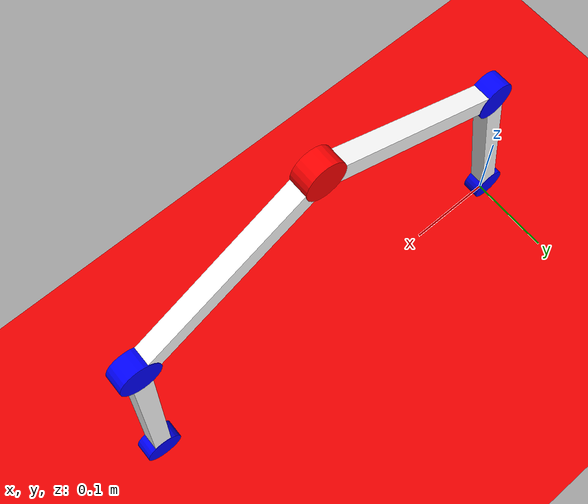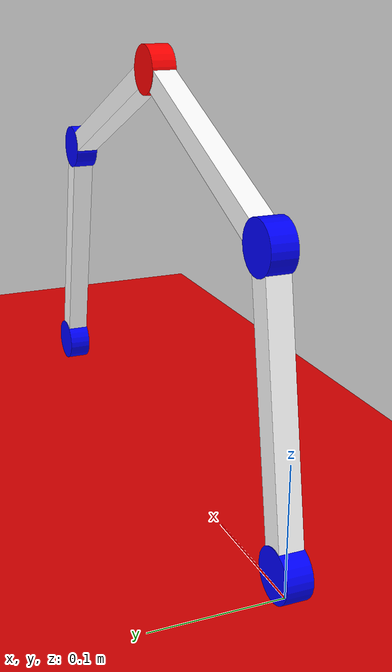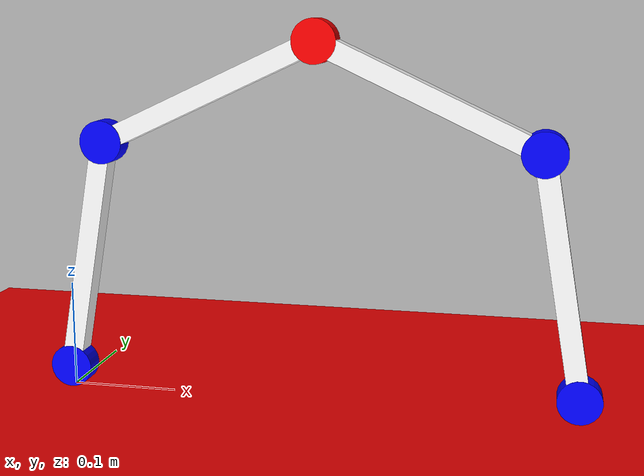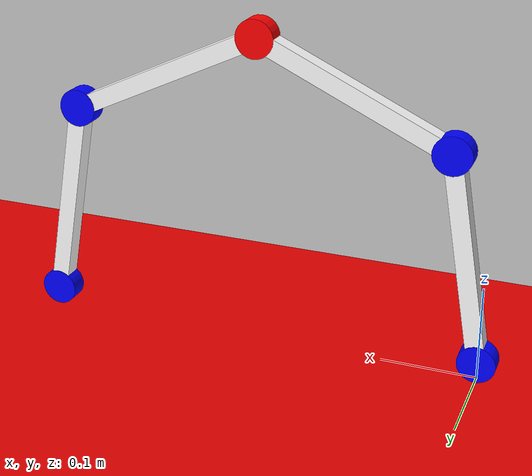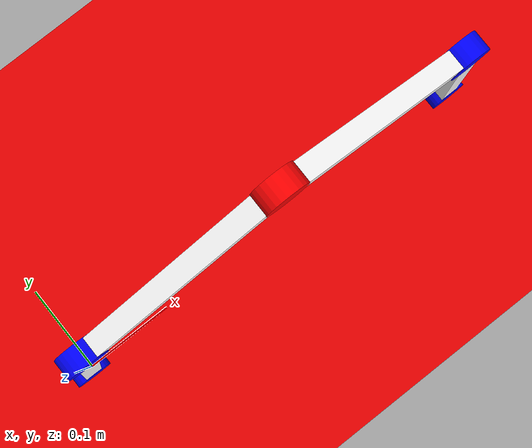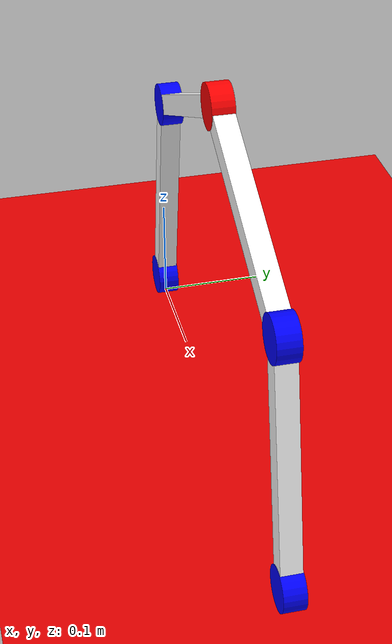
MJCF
<mujoco>
    <option timestep="0.0002" />
    <asset>
        <material name="black" rgba="0 0 0 0.5" />
        <material name="blue_" rgba="0 0 1 1" />
        <material name="green" rgba="0 1 0 1" />
        <material name="red__" rgba="1 0 0 1" />
        <material name="white" rgba="1 1 1 1" />
    </asset>
    <actuator>
        <motor gear="100" joint="joint_1" name="first_motor" ctrlrange="-50 50" ctrllimited="true"/>
        <motor gear="100" joint="joint_5" name="second_motor" ctrlrange="-50 50" ctrllimited="true"/>
    </actuator>
    <worldbody>
        <geom type="plane" size="10 10 0.1" pos="0 0 0" rgba=".9 0 0 1" />
        <light diffuse=".5 .5 .5" pos="0 0 3" dir="0 0 -1" />
        <body name="active_0" pos="0 0 0.02" euler="0 100 0">
            <geom type="cylinder" size=".02 .01" pos="0 0 0" euler="90 0 0" material="blue_" mass="0.065"/>
            <joint name="joint_1" pos="0 0 0" axis="0 1 0" />-
            <geom type="box" size=".0095 .0095 .1" pos="-.11 0 0" euler="0 90 0" material="white" />
            <body name="passive_0" pos="-.22 0 0" euler="0 55 0">
                <joint name="joint_2" pos="0 0 0" axis="0 1 0" />-
                <geom type="cylinder" size=".02 .01" pos="0 0 0" euler="90 0 0" material="blue_" mass="0.065"/>
                <geom type="box" size=".0095 .0095 .1" pos="-0.11 0 0" euler="0 90 0" material="white" />
                 <body name="passive_1" pos="-.22 0 0" euler="0 50 0" gravcomp="10">
                    <joint name="joint_3" pos="0 0 0" axis="0 1 0" />-
                    <geom type="cylinder" size=".02 .01" pos="0 0 0" euler="90 0 0" material="red__" mass="0.065"/>
                    <geom type="box" size=".0095 .0095 .1" pos="-.11 0 0" euler="0 90 0" material="white" />
                    <body name="passive_2" pos="-.22 0 0" euler="0 55 0">
                        <joint name="joint_4" pos="0 0 0" axis="0 1 0" />-
                        <geom type="cylinder" size=".02 .01" pos="0 0 0" euler="90 0 0" material="blue_"  mass="0.065"/>
                        <geom type="box" size=".0095 .0095 .1" pos="-.11 0 0" euler="0 90 0" material="white" />
                        <body name="active_1" pos="-.22 0 0" euler="0 45 0">
                            <joint name="joint_5" pos="0 0 0" axis="0 1 0" />-
                            <geom type="cylinder" size=".02 .01" pos="0 0 0" euler="90 0 0" material="blue_" mass="0.065"/>
                        </body>
                    </body>
                </body>
            </body>
        </body>
    </worldbody>
    <equality>
        <connect name="link_0" active="true" body1="active_0" anchor="0 0 0"/>
        <connect name="link_1" active="true" body1="active_1" anchor="0 0 0"/>
    </equality>
</mujoco>
